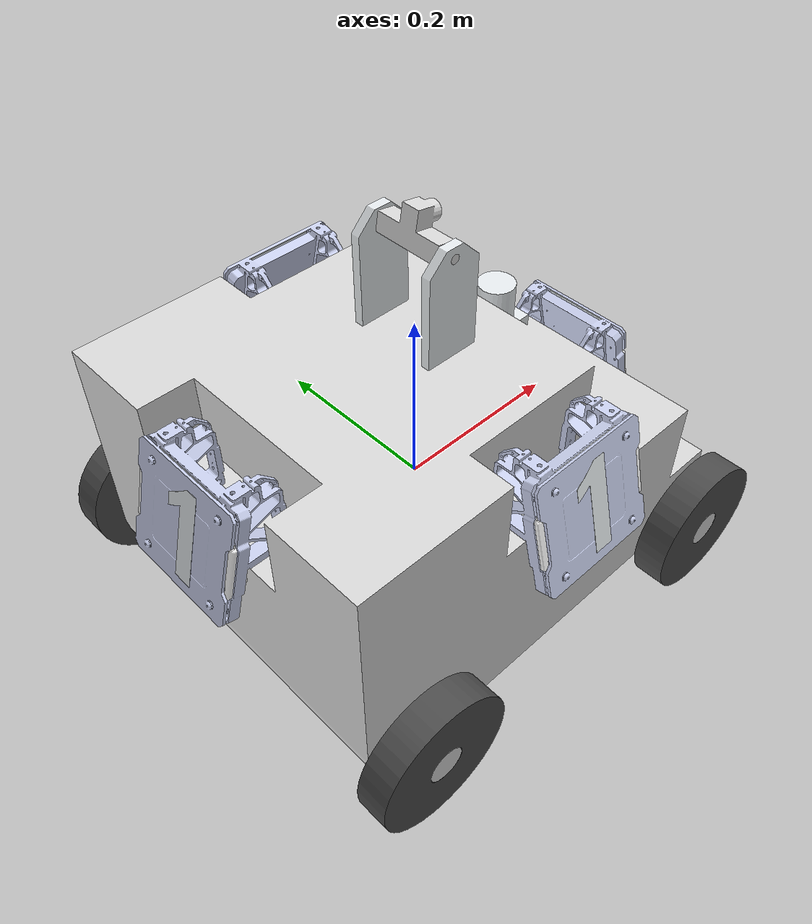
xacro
<robot
  name="small_car">
  <link
    name="base_link">
    <inertial>
      <origin
        xyz="-0.0141093007890566 -0.00252362802672281 -1.02707801948561E-17"
        rpy="0 0 0" />
      <mass
        value="91.3099819233603" />
      <inertia
        ixx="1.53893310122709"
        ixy="0.0676672404593872"
        ixz="-9.82600213270218E-17"
        iyy="2.9351944546979"
        iyz="6.28154629986737E-19"
        izz="1.99320178818682" />
    </inertial>
    <visual>
      <origin
        xyz="0 0 0"
        rpy="0 0 0" />
      <geometry>
        <mesh
          filename="package://small_car/meshes/base_link.STL" />
      </geometry>
      <material
        name="">
        <color
          rgba="0.847058823529412 0.847058823529412 0.847058823529412 1" />
      </material>
    </visual>
    <collision>
      <origin
        xyz="0 0 0"
        rpy="0 0 0" />
      <geometry>
        <mesh
          filename="package://small_car/meshes/base_link.STL" />
      </geometry>
    </collision>
  </link>
  <link
    name="armor4_link">
    <inertial>
      <origin
        xyz="-0.0401589264976322 -0.00708527107653623 0.132900143381206"
        rpy="0 0 0" />
      <mass
        value="0.147972658641805" />
      <inertia
        ixx="0.000456034431800639"
        ixy="5.11949835899828E-05"
        ixz="2.00582248777474E-08"
        iyy="0.000352852795644135"
        iyz="5.52975258032599E-08"
        izz="0.00026091921046" />
    </inertial>
    <visual>
      <origin
        xyz="0 0 0"
        rpy="0 0 0" />
      <geometry>
        <mesh
          filename="package://small_car/meshes/armor4_link.STL" />
      </geometry>
      <material
        name="">
        <color
          rgba="0.792156862745098 0.819607843137255 0.933333333333333 1" />
      </material>
    </visual>
    <collision>
      <origin
        xyz="0 0 0"
        rpy="0 0 0" />
      <geometry>
        <mesh
          filename="package://small_car/meshes/armor4_link.STL" />
      </geometry>
    </collision>
  </link>
  <joint
    name="armor4_joint"
    type="fixed">
    <origin
      xyz="0.29817 0.1329 0.03448"
      rpy="1.5708 0 0" />
    <parent
      link="base_link" />
    <child
      link="armor4_link" />
    <axis
      xyz="0 0 0" />
  </joint>
  <link
    name="led6_link">
    <inertial>
      <origin
        xyz="0.271524523996658 -0.0977320406177388 -0.276286491896856"
        rpy="0 0 0" />
      <mass
        value="0.0037565493089812" />
      <inertia
        ixx="1.17546875060039E-06"
        ixy="2.87877950970006E-07"
        ixz="1.93853028539349E-08"
        iyy="1.78229620731671E-07"
        iyz="5.19426124637486E-09"
        izz="1.26194903358949E-06" />
    </inertial>
    <visual>
      <origin
        xyz="0 0 0"
        rpy="0 0 0" />
      <geometry>
        <mesh
          filename="package://small_car/meshes/led6_link.STL" />
      </geometry>
      <material
        name="">
        <color
          rgba="1 1 1 1" />
      </material>
    </visual>
    <collision>
      <origin
        xyz="0 0 0"
        rpy="0 0 0" />
      <geometry>
        <mesh
          filename="package://small_car/meshes/led6_link.STL" />
      </geometry>
    </collision>
  </link>
  <joint
    name="led6_joint"
    type="fixed">
    <origin
      xyz="-0.29817 0.087834 0.34596"
      rpy="0 0 0" />
    <parent
      link="armor4_link" />
    <child
      link="led6_link" />
    <axis
      xyz="0 0 0" />
  </joint>
  <link
    name="led7_link">
    <inertial>
      <origin
        xyz="0.00846410135599102 0.00226794095620233 0.0632260655118929"
        rpy="0 0 0" />
      <mass
        value="0.00375654834326113" />
      <inertia
        ixx="1.17546825436812E-06"
        ixy="2.8787811632163E-07"
        ixz="-1.93852829919951E-08"
        iyy="1.78229719152718E-07"
        iyz="-5.19432587203597E-09"
        izz="1.26194863617826E-06" />
    </inertial>
    <visual>
      <origin
        xyz="0 0 0"
        rpy="0 0 0" />
      <geometry>
        <mesh
          filename="package://small_car/meshes/led7_link.STL" />
      </geometry>
      <material
        name="">
        <color
          rgba="1 1 1 1" />
      </material>
    </visual>
    <collision>
      <origin
        xyz="0 0 0"
        rpy="0 0 0" />
      <geometry>
        <mesh
          filename="package://small_car/meshes/led7_link.STL" />
      </geometry>
    </collision>
  </link>
  <joint
    name="led7_joint"
    type="fixed">
    <origin
      xyz="-0.035115 -0.012166 0.1329"
      rpy="0 0 0" />
    <parent
      link="armor4_link" />
    <child
      link="led7_link" />
    <axis
      xyz="0 0 0" />
  </joint>
  <link
    name="figure1_link">
    <inertial>
      <origin
        xyz="0.273966224208917 -0.0457989014064833 -0.00233186212031204"
        rpy="0 0 0" />
      <mass
        value="0.0475463833613652" />
      <inertia
        ixx="6.8465816428079E-05"
        ixy="-4.15221401744348E-08"
        ixz="1.32216117504582E-07"
        iyy="1.62588903750353E-05"
        iyz="-9.25463811280875E-07"
        izz="5.23494011014597E-05" />
    </inertial>
    <visual>
      <origin
        xyz="0 0 0"
        rpy="0 0 0" />
      <geometry>
        <mesh
          filename="package://small_car/meshes/figure1_link.STL" />
      </geometry>
      <material
        name="">
        <color
          rgba="0.898039215686275 0.917647058823529 0.929411764705882 1" />
      </material>
    </visual>
    <collision>
      <origin
        xyz="0 0 0"
        rpy="0 0 0" />
      <geometry>
        <mesh
          filename="package://small_car/meshes/figure1_link.STL" />
      </geometry>
    </collision>
  </link>
  <joint
    name="figure1_joint"
    type="fixed">
    <origin
      xyz="-0.29817 -0.03448 0.1329"
      rpy="0 0 0.2618" />
    <parent
      link="armor4_link" />
    <child
      link="figure1_link" />
    <axis
      xyz="0 0 0" />
  </joint>
  <link
    name="armor2_link">
    <inertial>
      <origin
        xyz="-0.13290014341086 -0.00708527109903054 -0.0401589264863958"
        rpy="0 0 0" />
      <mass
        value="0.147972658732963" />
      <inertia
        ixx="0.000260919210619361"
        ixy="-5.52976961465778E-08"
        ixz="-2.00581421264041E-08"
        iyy="0.000352852795899702"
        iyz="5.11949836527124E-05"
        izz="0.000456034432153879" />
    </inertial>
    <visual>
      <origin
        xyz="0 0 0"
        rpy="0 0 0" />
      <geometry>
        <mesh
          filename="package://small_car/meshes/armor2_link.STL" />
      </geometry>
      <material
        name="">
        <color
          rgba="0.792156862745098 0.819607843137255 0.933333333333333 1" />
      </material>
    </visual>
    <collision>
      <origin
        xyz="0 0 0"
        rpy="0 0 0" />
      <geometry>
        <mesh
          filename="package://small_car/meshes/armor2_link.STL" />
      </geometry>
    </collision>
  </link>
  <joint
    name="armor2_joint"
    type="fixed">
    <origin
      xyz="0.1329 -0.24817 0.13448"
      rpy="1.5708 0 0" />
    <parent
      link="base_link" />
    <child
      link="armor2_link" />
    <axis
      xyz="0 0 0" />
  </joint>
  <link
    name="led3_link">
    <inertial>
      <origin
        xyz="-0.199834360781746 0.102267956211596 0.221524523593012"
        rpy="0 0 0" />
      <mass
        value="0.00375654838870359" />
      <inertia
        ixx="1.26194864299701E-06"
        ixy="-5.19422380218442E-09"
        ixz="-1.93853100677096E-08"
        iyy="1.78229592216683E-07"
        iyz="2.87877896069799E-07"
        izz="1.175468388034E-06" />
    </inertial>
    <visual>
      <origin
        xyz="0 0 0"
        rpy="0 0 0" />
      <geometry>
        <mesh
          filename="package://small_car/meshes/led3_link.STL" />
      </geometry>
      <material
        name="">
        <color
          rgba="1 1 1 1" />
      </material>
    </visual>
    <collision>
      <origin
        xyz="0 0 0"
        rpy="0 0 0" />
      <geometry>
        <mesh
          filename="package://small_car/meshes/led3_link.STL" />
      </geometry>
    </collision>
  </link>
  <joint
    name="led3_joint"
    type="fixed">
    <origin
      xyz="0.13016 -0.11217 -0.24817"
      rpy="0 0 0" />
    <parent
      link="armor2_link" />
    <child
      link="led3_link" />
    <axis
      xyz="0 0 0" />
  </joint>
  <link
    name="led4_link">
    <inertial>
      <origin
        xyz="-0.0632260656259004 0.00226793849224093 0.43458495581935"
        rpy="0 0 0" />
      <mass
        value="0.0037565492560915" />
      <inertia
        ixx="1.26194902597014E-06"
        ixy="5.19429025277018E-09"
        ixz="1.938529521109E-08"
        iyy="1.78229782230221E-07"
        iyz="2.87878231315116E-07"
        izz="1.17546858147122E-06" />
    </inertial>
    <visual>
      <origin
        xyz="0 0 0"
        rpy="0 0 0" />
      <geometry>
        <mesh
          filename="package://small_car/meshes/led4_link.STL" />
      </geometry>
      <material
        name="">
        <color
          rgba="1 1 1 1" />
      </material>
    </visual>
    <collision>
      <origin
        xyz="0 0 0"
        rpy="0 0 0" />
      <geometry>
        <mesh
          filename="package://small_car/meshes/led4_link.STL" />
      </geometry>
    </collision>
  </link>
  <joint
    name="led4_joint"
    type="fixed">
    <origin
      xyz="-0.132897193972804 -0.0121655712822631 -0.461235378497273"
      rpy="0 0 0" />
    <parent
      link="armor2_link" />
    <child
      link="led4_link" />
    <axis
      xyz="0 0 0" />
  </joint>
  <link
    name="figure2_link">
    <inertial>
      <origin
        xyz="0.251551837404716 0.0637346334775495 -0.0023318621203126"
        rpy="0 0 0" />
      <mass
        value="0.0475463833613651" />
      <inertia
        ixx="6.84658164280788E-05"
        ixy="-4.15221401744339E-08"
        ixz="1.32216117504581E-07"
        iyy="1.62588903750353E-05"
        iyz="-9.25463811280846E-07"
        izz="5.23494011014596E-05" />
    </inertial>
    <visual>
      <origin
        xyz="0 0 0"
        rpy="0 0 0" />
      <geometry>
        <mesh
          filename="package://small_car/meshes/figure2_link.STL" />
      </geometry>
      <material
        name="">
        <color
          rgba="0.898039215686275 0.917647058823529 0.929411764705882 1" />
      </material>
    </visual>
    <collision>
      <origin
        xyz="0 0 0"
        rpy="0 0 0" />
      <geometry>
        <mesh
          filename="package://small_car/meshes/figure2_link.STL" />
      </geometry>
    </collision>
  </link>
  <joint
    name="figure2_joint"
    type="fixed">
    <origin
      xyz="-0.1329 -0.13448 -0.24817"
      rpy="-1.5708 -1.309 1.5708" />
    <parent
      link="armor2_link" />
    <child
      link="figure2_link" />
    <axis
      xyz="0 0 0" />
  </joint>
  <link
    name="armor1_link">
    <inertial>
      <origin
        xyz="0.040158926490482 -0.00708527109095713 -0.132900143400004"
        rpy="0 0 0" />
      <mass
        value="0.147972658700033" />
      <inertia
        ixx="0.00045603443202478"
        ixy="-5.11949836300382E-05"
        ixz="2.00581726134441E-08"
        iyy="0.000352852795805126"
        iyz="-5.52976341563103E-08"
        izz="0.000260919210562265" />
    </inertial>
    <visual>
      <origin
        xyz="0 0 0"
        rpy="0 0 0" />
      <geometry>
        <mesh
          filename="package://small_car/meshes/armor1_link.STL" />
      </geometry>
      <material
        name="">
        <color
          rgba="0.792156862745098 0.819607843137255 0.933333333333333 1" />
      </material>
    </visual>
    <collision>
      <origin
        xyz="0 0 0"
        rpy="0 0 0" />
      <geometry>
        <mesh
          filename="package://small_car/meshes/armor1_link.STL" />
      </geometry>
    </collision>
  </link>
  <joint
    name="armor1_joint"
    type="fixed">
    <origin
      xyz="-0.29817495221909 -0.132897193972804 0.134479829686757"
      rpy="1.5707963267949 0 0" />
    <parent
      link="base_link" />
    <child
      link="armor1_link" />
    <axis
      xyz="0 0 0" />
  </joint>
  <link
    name="led8_link">
    <inertial>
      <origin
        xyz="-0.00846409731482828 0.00226795621159602 0.0632260654964373"
        rpy="0 0 0" />
      <mass
        value="0.00375654838870359" />
      <inertia
        ixx="1.175468388034E-06"
        ixy="-2.878778960698E-07"
        ixz="1.93853100677091E-08"
        iyy="1.78229592216684E-07"
        iyz="-5.19422380218629E-09"
        izz="1.26194864299701E-06" />
    </inertial>
    <visual>
      <origin
        xyz="0 0 0"
        rpy="0 0 0" />
      <geometry>
        <mesh
          filename="package://small_car/meshes/led8_link.STL" />
      </geometry>
      <material
        name="">
        <color
          rgba="1 1 1 1" />
      </material>
    </visual>
    <collision>
      <origin
        xyz="0 0 0"
        rpy="0 0 0" />
      <geometry>
        <mesh
          filename="package://small_car/meshes/led8_link.STL" />
      </geometry>
    </collision>
  </link>
  <joint
    name="led8_joint"
    type="fixed">
    <origin
      xyz="0.0351145259409062 -0.0121655712822634 -0.132897193972804"
      rpy="0 0 0" />
    <parent
      link="armor1_link" />
    <child
      link="led8_link" />
    <axis
      xyz="0 0 0" />
  </joint>
  <link
    name="led5_link">
    <inertial>
      <origin
        xyz="-0.271524529541165 0.00226793849224059 -0.276286491904085"
        rpy="0 0 0" />
      <mass
        value="0.00375654925609149" />
      <inertia
        ixx="1.17546858147122E-06"
        ixy="-2.87878231315116E-07"
        ixz="-1.93852952110895E-08"
        iyy="1.78229782230222E-07"
        iyz="5.19429025277195E-09"
        izz="1.26194902597014E-06" />
    </inertial>
    <visual>
      <origin
        xyz="0 0 0"
        rpy="0 0 0" />
      <geometry>
        <mesh
          filename="package://small_car/meshes/led5_link.STL" />
      </geometry>
      <material
        name="">
        <color
          rgba="1 1 1 1" />
      </material>
    </visual>
    <collision>
      <origin
        xyz="0 0 0"
        rpy="0 0 0" />
      <geometry>
        <mesh
          filename="package://small_car/meshes/led5_link.STL" />
      </geometry>
    </collision>
  </link>
  <joint
    name="led5_joint"
    type="fixed">
    <origin
      xyz="0.29817495221909 -0.0121655712822631 0.0801632323053796"
      rpy="0 0 0" />
    <parent
      link="armor1_link" />
    <child
      link="led5_link" />
    <axis
      xyz="0 0 0" />
  </joint>
  <link
    name="figure3_link">
    <inertial>
      <origin
        xyz="0.299848128719169 0.050793681222423 -0.00233186212031228"
        rpy="0 0 0" />
      <mass
        value="0.0475463833613652" />
      <inertia
        ixx="6.84658164280789E-05"
        ixy="-4.15221401744236E-08"
        ixz="1.32216117504585E-07"
        iyy="1.62588903750353E-05"
        iyz="-9.25463811280904E-07"
        izz="5.23494011014597E-05" />
    </inertial>
    <visual>
      <origin
        xyz="0 0 0"
        rpy="0 0 0" />
      <geometry>
        <mesh
          filename="package://small_car/meshes/figure3_link.STL" />
      </geometry>
      <material
        name="">
        <color
          rgba="0.898039215686275 0.917647058823529 0.929411764705882 1" />
      </material>
    </visual>
    <collision>
      <origin
        xyz="0 0 0"
        rpy="0 0 0" />
      <geometry>
        <mesh
          filename="package://small_car/meshes/figure3_link.STL" />
      </geometry>
    </collision>
  </link>
  <joint
    name="figure3_joint"
    type="fixed">
    <origin
      xyz="0.29817495221909 -0.134479829686757 -0.132897193972804"
      rpy="3.14159265358979 0 2.87979326579064" />
    <parent
      link="armor1_link" />
    <child
      link="figure3_link" />
    <axis
      xyz="0 0 0" />
  </joint>
  <link
    name="armor3_link">
    <inertial>
      <origin
        xyz="0.132900143410293 -0.00708527109855803 0.040158926486587"
        rpy="0 0 0" />
      <mass
        value="0.14797265873123" />
      <inertia
        ixx="0.000260919210615943"
        ixy="5.52976925526035E-08"
        ixz="-2.00581435411989E-08"
        iyy="0.00035285279589494"
        iyz="-5.1194983651526E-05"
        izz="0.000456034432146617" />
    </inertial>
    <visual>
      <origin
        xyz="0 0 0"
        rpy="0 0 0" />
      <geometry>
        <mesh
          filename="package://small_car/meshes/armor3_link.STL" />
      </geometry>
      <material
        name="">
        <color
          rgba="0.792156862745098 0.819607843137255 0.933333333333333 1" />
      </material>
    </visual>
    <collision>
      <origin
        xyz="0 0 0"
        rpy="0 0 0" />
      <geometry>
        <mesh
          filename="package://small_car/meshes/armor3_link.STL" />
      </geometry>
    </collision>
  </link>
  <joint
    name="armor3_joint"
    type="fixed">
    <origin
      xyz="-0.132897193972804 0.24817495221909 0.134479829686757"
      rpy="1.5707963267949 0 0" />
    <parent
      link="base_link" />
    <child
      link="armor3_link" />
    <axis
      xyz="0 0 0" />
  </joint>
  <link
    name="led2_link">
    <inertial>
      <origin
        xyz="0.199834360781746 0.00226795621159621 -0.221524523593012"
        rpy="0 0 0" />
      <mass
        value="0.00375654838870359" />
      <inertia
        ixx="1.26194864299701E-06"
        ixy="5.19422380218442E-09"
        ixz="-1.93853100677096E-08"
        iyy="1.78229592216683E-07"
        iyz="-2.87877896069799E-07"
        izz="1.175468388034E-06" />
    </inertial>
    <visual>
      <origin
        xyz="0 0 0"
        rpy="0 0 0" />
      <geometry>
        <mesh
          filename="package://small_car/meshes/led2_link.STL" />
      </geometry>
      <material
        name="">
        <color
          rgba="1 1 1 1" />
      </material>
    </visual>
    <collision>
      <origin
        xyz="0 0 0"
        rpy="0 0 0" />
      <geometry>
        <mesh
          filename="package://small_car/meshes/led2_link.STL" />
      </geometry>
    </collision>
  </link>
  <joint
    name="led2_joint"
    type="fixed">
    <origin
      xyz="-0.130163232305379 -0.0121655712822633 0.24817495221909"
      rpy="0 0 0" />
    <parent
      link="armor3_link" />
    <child
      link="led2_link" />
    <axis
      xyz="0 0 0" />
  </joint>
  <link
    name="led1_link">
    <inertial>
      <origin
        xyz="0.0632260656259004 0.00226793849224081 -0.00846410326298186"
        rpy="0 0 0" />
      <mass
        value="0.00375654925609148" />
      <inertia
        ixx="1.26194902597014E-06"
        ixy="-5.19429025276988E-09"
        ixz="1.938529521109E-08"
        iyy="1.78229782230222E-07"
        iyz="-2.87878231315115E-07"
        izz="1.17546858147122E-06" />
    </inertial>
    <visual>
      <origin
        xyz="0 0 0"
        rpy="0 0 0" />
      <geometry>
        <mesh
          filename="package://small_car/meshes/led1_link.STL" />
      </geometry>
      <material
        name="">
        <color
          rgba="1 1 1 1" />
      </material>
    </visual>
    <collision>
      <origin
        xyz="0 0 0"
        rpy="0 0 0" />
      <geometry>
        <mesh
          filename="package://small_car/meshes/led1_link.STL" />
      </geometry>
    </collision>
  </link>
  <joint
    name="led1_joint"
    type="fixed">
    <origin
      xyz="0.132897193972804 -0.0121655712822632 0.0351145259409066"
      rpy="0 0 0" />
    <parent
      link="armor3_link" />
    <child
      link="led1_link" />
    <axis
      xyz="0 0 0" />
  </joint>
  <link
    name="figure4_link">
    <inertial>
      <origin
        xyz="0.251551837404716 0.0637346334775496 -0.00233186212031312"
        rpy="0 0 0" />
      <mass
        value="0.0475463833613649" />
      <inertia
        ixx="6.84658164280783E-05"
        ixy="-4.15221401744297E-08"
        ixz="1.32216117504576E-07"
        iyy="1.62588903750351E-05"
        iyz="-9.25463811280892E-07"
        izz="5.23494011014593E-05" />
    </inertial>
    <visual>
      <origin
        xyz="0 0 0"
        rpy="0 0 0" />
      <geometry>
        <mesh
          filename="package://small_car/meshes/figure4_link.STL" />
      </geometry>
      <material
        name="">
        <color
          rgba="0.898039215686275 0.917647058823529 0.929411764705882 1" />
      </material>
    </visual>
    <collision>
      <origin
        xyz="0 0 0"
        rpy="0 0 0" />
      <geometry>
        <mesh
          filename="package://small_car/meshes/figure4_link.STL" />
      </geometry>
    </collision>
  </link>
  <joint
    name="figure4_joint"
    type="fixed">
    <origin
      xyz="0.132897193972804 -0.134479829686757 0.24817495221909"
      rpy="1.57079632679488 1.30899693899575 1.57079632679488" />
    <parent
      link="armor3_link" />
    <child
      link="figure4_link" />
    <axis
      xyz="0 0 0" />
  </joint>
  <link
    name="wheel1_link">
    <inertial>
      <origin
        xyz="0 0 0"
        rpy="0 0 0" />
      <mass
        value="0.694947585989445" />
      <inertia
        ixx="0.00217249302225125"
        ixy="1.27171479163018E-19"
        ixz="-5.70249879464901E-20"
        iyy="0.00115718907719538"
        iyz="-4.80686803583404E-20"
        izz="0.00115718907719538" />
    </inertial>
    <visual>
      <origin
        xyz="0 0 0"
        rpy="0 0 0" />
      <geometry>
        <mesh
          filename="package://small_car/meshes/wheel1_link.STL" />
      </geometry>
      <material
        name="">
        <color
          rgba="0.298039215686275 0.298039215686275 0.298039215686275 1" />
      </material>
    </visual>
    <collision>
      <origin
        xyz="0 0 0"
        rpy="0 0 0" />
      <geometry>
        <mesh
          filename="package://small_car/meshes/wheel1_link.STL" />
      </geometry>
    </collision>
  </link>
  <joint
    name="wheel1_joint"
    type="fixed">
    <origin
      xyz="0.2 0.2325 -0.05"
      rpy="-3.7007E-16 -6.123E-17 -1.5708" />
    <parent
      link="base_link" />
    <child
      link="wheel1_link" />
    <axis
      xyz="1 0 0" />
    <limit
      lower="-180"
      upper="180"
      effort="0"
      velocity="0" />
  </joint>
  <link
    name="wheel2_link">
    <inertial>
      <origin
        xyz="0 0 0"
        rpy="0 0 0" />
      <mass
        value="0.694947585989443" />
      <inertia
        ixx="0.00217249302225125"
        ixy="4.42817567008229E-20"
        ixz="-2.91303603856686E-20"
        iyy="0.00115718907719538"
        iyz="8.81723658065134E-20"
        izz="0.00115718907719538" />
    </inertial>
    <visual>
      <origin
        xyz="0 0 0"
        rpy="0 0 0" />
      <geometry>
        <mesh
          filename="package://small_car/meshes/wheel2_link.STL" />
      </geometry>
      <material
        name="">
        <color
          rgba="0.298039215686275 0.298039215686275 0.298039215686275 1" />
      </material>
    </visual>
    <collision>
      <origin
        xyz="0 0 0"
        rpy="0 0 0" />
      <geometry>
        <mesh
          filename="package://small_car/meshes/wheel2_link.STL" />
      </geometry>
    </collision>
  </link>
  <joint
    name="wheel2_joint"
    type="fixed">
    <origin
      xyz="0.2 -0.2325 -0.05"
      rpy="-3.7007E-16 -6.123E-17 -1.5708" />
    <parent
      link="base_link" />
    <child
      link="wheel2_link" />
    <axis
      xyz="1 0 0" />
    <limit
      lower="-180"
      upper="180"
      effort="0"
      velocity="0" />
  </joint>
  <link
    name="wheel3_link">
    <inertial>
      <origin
        xyz="2.77555756156289E-17 2.77555756156289E-17 0"
        rpy="0 0 0" />
      <mass
        value="0.694947585989443" />
      <inertia
        ixx="0.00217249302225125"
        ixy="1.84979619598937E-19"
        ixz="-5.06607676113409E-20"
        iyy="0.00115718907719538"
        iyz="2.33963734921441E-21"
        izz="0.00115718907719538" />
    </inertial>
    <visual>
      <origin
        xyz="0 0 0"
        rpy="0 0 0" />
      <geometry>
        <mesh
          filename="package://small_car/meshes/wheel3_link.STL" />
      </geometry>
      <material
        name="">
        <color
          rgba="0.298039215686275 0.298039215686275 0.298039215686275 1" />
      </material>
    </visual>
    <collision>
      <origin
        xyz="0 0 0"
        rpy="0 0 0" />
      <geometry>
        <mesh
          filename="package://small_car/meshes/wheel3_link.STL" />
      </geometry>
    </collision>
  </link>
  <joint
    name="wheel3_joint"
    type="fixed">
    <origin
      xyz="-0.2 -0.2325 -0.05"
      rpy="-3.7007E-16 -6.123E-17 -1.5708" />
    <parent
      link="base_link" />
    <child
      link="wheel3_link" />
    <axis
      xyz="1 0 0" />
    <limit
      lower="-180"
      upper="180"
      effort="0"
      velocity="0" />
  </joint>
  <link
    name="wheel4_link">
    <inertial>
      <origin
        xyz="0 0 6.93889390390723E-18"
        rpy="0 0 0" />
      <mass
        value="0.694947585989444" />
      <inertia
        ixx="0.00217249302225125"
        ixy="3.72982644069231E-19"
        ixz="-2.22690565326909E-19"
        iyy="0.00115718907719538"
        iyz="1.46208156970576E-20"
        izz="0.00115718907719538" />
    </inertial>
    <visual>
      <origin
        xyz="0 0 0"
        rpy="0 0 0" />
      <geometry>
        <mesh
          filename="package://small_car/meshes/wheel4_link.STL" />
      </geometry>
      <material
        name="">
        <color
          rgba="0.298039215686275 0.298039215686275 0.298039215686275 1" />
      </material>
    </visual>
    <collision>
      <origin
        xyz="0 0 0"
        rpy="0 0 0" />
      <geometry>
        <mesh
          filename="package://small_car/meshes/wheel4_link.STL" />
      </geometry>
    </collision>
  </link>
  <joint
    name="wheel4_joint"
    type="fixed">
    <origin
      xyz="-0.2 0.2325 -0.05"
      rpy="-3.7007E-16 -6.123E-17 -1.5708" />
    <parent
      link="base_link" />
    <child
      link="wheel4_link" />
    <axis
      xyz="1 0 0" />
    <limit
      lower="-180"
      upper="180"
      effort="0"
      velocity="0" />
  </joint>
  <link
    name="motor_link">
    <inertial>
      <origin
        xyz="1.23323882393276E-19 7.76753479803778E-18 0.0246272342427093"
        rpy="0 0 0" />
      <mass
        value="0.375695211461169" />
      <inertia
        ixx="0.000159655812251878"
        ixy="6.01853107621011E-36"
        ixz="7.53204729482008E-21"
        iyy="0.000159655812251878"
        iyz="2.29065547945884E-21"
        izz="0.00016691841364714" />
    </inertial>
    <visual>
      <origin
        xyz="0 0 0"
        rpy="0 0 0" />
      <geometry>
        <mesh
          filename="package://small_car/meshes/motor_link.STL" />
      </geometry>
      <material
        name="">
        <color
          rgba="0.898039215686275 0.917647058823529 0.929411764705882 1" />
      </material>
    </visual>
    <collision>
      <origin
        xyz="0 0 0"
        rpy="0 0 0" />
      <geometry>
        <mesh
          filename="package://small_car/meshes/motor_link.STL" />
      </geometry>
    </collision>
  </link>
  <joint
    name="motor_joint"
    type="fixed">
    <origin
      xyz="0 0 0.1"
      rpy="3.154E-16 -6.123E-17 -1.5708" />
    <parent
      link="base_link" />
    <child
      link="motor_link" />
    <axis
      xyz="0 0 0" />
  </joint>
  <link
    name="gimble_frame_link">
    <inertial>
      <origin
        xyz="6.05738292168799E-17 -5.36559946595369E-17 0.061803081294958"
        rpy="0 0 0" />
      <mass
        value="0.617387556075014" />
      <inertia
        ixx="0.00165047630839583"
        ixy="3.32379198585652E-19"
        ixz="5.45493127960058E-19"
        iyy="0.00253899914374973"
        iyz="9.93789657321647E-19"
        izz="0.00125265562833856" />
    </inertial>
    <visual>
      <origin
        xyz="0 0 0"
        rpy="0 0 0" />
      <geometry>
        <mesh
          filename="package://small_car/meshes/gimble_frame_link.STL" />
      </geometry>
      <material
        name="">
        <color
          rgba="0.898039215686275 0.917647058823529 0.929411764705882 1" />
      </material>
    </visual>
    <collision>
      <origin
        xyz="0 0 0"
        rpy="0 0 0" />
      <geometry>
        <mesh
          filename="package://small_car/meshes/gimble_frame_link.STL" />
      </geometry>
    </collision>
  </link>
  <joint
    name="gimble_frame_joint"
    type="fixed">
    <origin
      xyz="0 0 0.05"
      rpy="-5.14103862200133E-47 0 0" />
    <parent
      link="motor_link" />
    <child
      link="gimble_frame_link" />
    <axis
      xyz="0 0 0" />
  </joint>
  <link
    name="camera_Link">
    <inertial>
      <origin
        xyz="-0.0189148598793259 1.59059317292146E-18 -0.0148687643371785"
        rpy="0 0 0" />
      <mass
        value="0.105960777719614" />
      <inertia
        ixx="5.69329797174416E-05"
        ixy="-2.63679058326985E-21"
        ixz="-1.70964458963275E-06"
        iyy="1.62436615343554E-05"
        iyz="1.13224329576307E-20"
        izz="5.03208923690087E-05" />
    </inertial>
    <visual>
      <origin
        xyz="0 0 0"
        rpy="0 0 0" />
      <geometry>
        <mesh
          filename="package://small_car/meshes/camera_Link.STL" />
      </geometry>
      <material
        name="">
        <color
          rgba="0.847058823529412 0.847058823529412 0.847058823529412 1" />
      </material>
    </visual>
    <collision>
      <origin
        xyz="0 0 0"
        rpy="0 0 0" />
      <geometry>
        <mesh
          filename="package://small_car/meshes/camera_Link.STL" />
      </geometry>
    </collision>
  </link>
  <joint
    name="camera_joint"
    type="fixed">
    <origin
      xyz="0 0.0231691186135827 0.164223191506906"
      rpy="3.68123155973083E-16 0.174532925199433 1.5707963267949" />
    <parent
      link="gimble_frame_link" />
    <child
      link="camera_Link" />
    <axis
      xyz="0 0 0" />
  </joint>
  <link
    name="lidar_Link">
    <inertial>
      <origin
        xyz="1.38777878078145E-17 1.50906933276145E-18 0.0379058310790544"
        rpy="0 0 0" />
      <mass
        value="0.473216802635079" />
      <inertia
        ixx="0.000368299563461324"
        ixy="2.36388993723603E-20"
        ixz="-1.19708257895502E-20"
        iyy="0.000368299563461324"
        iyz="-8.58545747148338E-22"
        izz="0.000167768360527016" />
    </inertial>
    <visual>
      <origin
        xyz="0 0 0"
        rpy="0 0 0" />
      <geometry>
        <mesh
          filename="package://small_car/meshes/lidar_Link.STL" />
      </geometry>
      <material
        name="">
        <color
          rgba="0.898039215686275 0.917647058823529 0.929411764705882 1" />
      </material>
    </visual>
    <collision>
      <origin
        xyz="0 0 0"
        rpy="0 0 0" />
      <geometry>
        <mesh
          filename="package://small_car/meshes/lidar_Link.STL" />
      </geometry>
    </collision>
  </link>
  <joint
    name="lidar_joint"
    type="fixed">
    <origin
      xyz="0.115 0 0.1001"
      rpy="-9.41368496624362E-16 8.32667268468868E-16 4.71844785465691E-16" />
    <parent
      link="base_link" />
    <child
      link="lidar_Link" />
    <axis
      xyz="0 0 0" />
  </joint>
  <link
    name="labal_camera">
    <inertial>
      <origin
        xyz="0.00376413737909007 0.0263912448214713 -1.32094107305534E-15"
        rpy="0 0 0" />
      <mass
        value="0.0225345127194668" />
      <inertia
        ixx="5.11146727244977E-06"
        ixy="-1.15433546292094E-06"
        ixz="1.45204129291072E-20"
        iyy="3.33622113372704E-06"
        iyz="7.7660263785259E-21"
        izz="7.16286954564487E-06" />
    </inertial>
    <visual>
      <origin
        xyz="0 0 0"
        rpy="0 0 0" />
      <geometry>
        <mesh
          filename="package://small_car/meshes/labal_camera.STL" />
      </geometry>
      <material
        name="">
        <color
          rgba="1 1 1 1" />
      </material>
    </visual>
    <collision>
      <origin
        xyz="0 0 0"
        rpy="0 0 0" />
      <geometry>
        <mesh
          filename="package://small_car/meshes/labal_camera.STL" />
      </geometry>
    </collision>
  </link>
  <joint
    name="labal_camera"
    type="fixed">
    <origin
      xyz="-0.22 0 0.075"
      rpy="0 0 3.14" />
    <parent
      link="base_link" />
    <child
      link="labal_camera" />
    <axis
      xyz="0 0 0" />
  </joint>
    <gazebo reference="base_link">
     <material>Gazebo/Black </material>
  </gazebo>
  <gazebo reference="camera_Link">
     <material>Gazebo/Black </material>
  </gazebo>
  <gazebo reference="labal_camera">
     <material>Gazebo/Black </material>
  </gazebo>
  <gazebo reference="wheel1_link">
     <material>Gazebo/Black </material>
  </gazebo>
  <gazebo reference="wheel2_link">
     <material>Gazebo/Black </material>
  </gazebo>
  <gazebo reference="wheel3_link">
     <material>Gazebo/Black </material>
  </gazebo>
  <gazebo reference="wheel4_link">
     <material>Gazebo/Black </material>
  </gazebo>
  <gazebo reference="armor1_link">
     <material>Gazebo/Black </material>
  </gazebo>
  <gazebo reference="armor2_link">
     <material>Gazebo/Black </material>
  </gazebo>
  <gazebo reference="armor3_link">
     <material>Gazebo/Black </material>
  </gazebo>
  <gazebo reference="armor4_link">
     <material>Gazebo/Black </material>
  </gazebo>
  <gazebo reference="lidar_Link">
     <material>Gazebo/Black </material>
  </gazebo>
  <gazebo reference="gimble_frame_link">
     <material>Gazebo/Black </material>
  </gazebo>
  <gazebo reference="led1_link">
     <material>Gazebo/Red </material>
  </gazebo>
  <gazebo reference="led2_link">
     <material>Gazebo/Red </material>
  </gazebo>
  <gazebo reference="led3_link">
     <material>Gazebo/Red </material>
  </gazebo>
  <gazebo reference="led4_link">
     <material>Gazebo/Red </material>
  </gazebo>
  <gazebo reference="led5_link">
     <material>Gazebo/Red </material>
  </gazebo>
  <gazebo reference="led6_link">
     <material>Gazebo/Red </material>
  </gazebo>
  <gazebo reference="led7_link">
     <material>Gazebo/Red </material>
  </gazebo>
  <gazebo reference="led8_link">
     <material>Gazebo/Red </material>
  </gazebo>
  <gazebo reference="lidar_Link">
    <turnGravityOff>false</turnGravityOff>
    <sensor type="ray" name="head_hokuyo_sensor">
      <pose>2000 2000 2000 0 0 0</pose>
      <visualize>false</visualize>
      <update_rate>40</update_rate>
      <ray>
        <scan>
          <horizontal>
            <samples>240</samples>
            <resolution>1</resolution>
            <min_angle>-1.570796</min_angle>
            <max_angle>1.570796</max_angle>
          </horizontal>
        </scan>
        <range>
          <min>0.10</min>
          <max>10.0</max>
          <resolution>0.001</resolution>
        </range>
      <noise>
          <type>gaussian</type>
        <mean>0.0</mean>
        <stddev>0.01</stddev>
      </noise>
      </ray>
      <plugin name="gazebo_ros_head_hokuyo_controller" filename="libgazebo_ros_laser.so">
        <topicName>/scan</topicName>
        <frameName>lidar_Link</frameName>
      </plugin>
    </sensor>
  </gazebo>
  <!-- position controller plugin-->
  <gazebo>
    <plugin name="mecanum_base_controller" filename="libgazebo_ros_planar_move.so">
      <commandTopic>cmd_vel</commandTopic>
      <odometryTopic>odom</odometryTopic>
      <odometryFrame>odom</odometryFrame>
      <odometryRate>100.0</odometryRate>
      <robotBaseFrame>base_link</robotBaseFrame>
      <broadcastTF>true</broadcastTF>
   </plugin>
 </gazebo>
<!-- ros_control plugin -->
  <gazebo>
    <plugin name="gazebo_ros_control" filename="libgazebo_ros_control.so">
      <robotNamespace>/small_car</robotNamespace>
      </plugin>
  </gazebo>
</robot>
